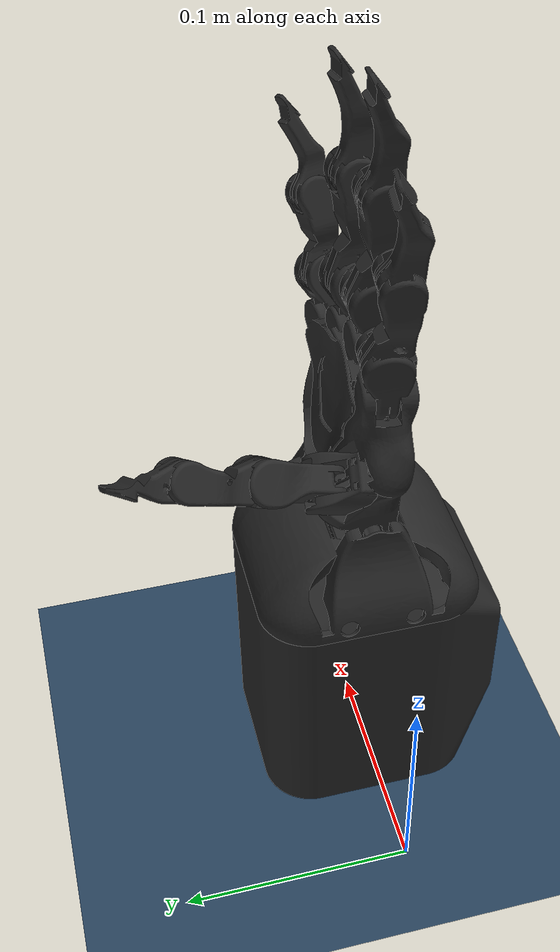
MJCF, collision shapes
<?xml version="1.0" ?>
<mujoco model="ORCA hand right scene">

  <include file="models/assets/scene.xml"/>

  <include file="models/assets/options.xml"/>

  <include file="models/mjcf/orcahand_right.mjcf"/>

  <worldbody>
    <body name="right_mount" pos="0.09363 0.00332 0.058" euler="1.5708 0 0">
      <include file="models/mjcf/orcahand_right_body.xml"/>
    </body>
  </worldbody>

</mujoco>

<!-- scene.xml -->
<mujoco model="orcahand_v2_scene">

  <!-- Camera placement -->
  <statistic extent="0.3" center="0 0 0.15"/>
  <visual>
    <rgba haze="0.15 0.25 0.35 1"/>
    <quality shadowsize="8192"/>
    <global azimuth="220" elevation="-30"/>
  </visual>

  <!-- Background -->
  <asset>
    <texture type="skybox" builtin="gradient" rgb1="0.3 0.5 0.7" rgb2="0 0 0" width="512" height="3072"/>
    <texture type="2d" name="groundplane" builtin="checker" mark="edge" rgb1="0.2 0.3 0.4" rgb2="0.1 0.2 0.3"
      markrgb="0.8 0.8 0.8" width="300" height="300"/>
    <material name="groundplane" texture="groundplane" texuniform="true" texrepeat="5 5" reflectance="0.2"/>
  </asset>

  <worldbody>
    <!-- Lighting and floor -->
    <light pos="0 0.5 1" dir="0 -0.3 -1" diffuse="0.8 0.8 0.8" specular="0.2 0.2 0.2"/>
    <light pos="0.3 0.5 1.5" dir="0 -0.3 -1" directional="true" diffuse="0.6 0.6 0.6" specular="0.1 0.1 0.1"/>
    <geom name="floor" pos="0 0 0" size="0 0 0.05" type="plane" material="groundplane"/>

  </worldbody>

</mujoco>

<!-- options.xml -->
<mujoco model="orcahand_v2_options">

  <!-- eulerseq "XYZ" corresponds to URDF "rpy" -->
  <compiler angle="radian" eulerseq="XYZ"/>

  <default>
    <mesh scale="0.001 0.001 0.001"/>
    <!-- Visual classes -->
    <default class="visual_base">
      <geom conaffinity="0" condim="1" contype="0" group="2" type="mesh"/>
      <default class="skin">
        <geom material="white"/>
      </default>
      <default class="bone">
        <geom material="black"/>
      </default>
    </default>
    <!-- Collision class -->
    <default class="collision">
      <geom conaffinity="1" condim="3" contype="1" group="1" material="invisible" type="mesh"/>
    </default>
    <!-- Joints -->
    <joint armature="0.001" damping="0.1" frictionloss="0.001" limited="true" margin="0.01" type="hinge"/>
    <position ctrllimited="true" forcelimited="true" forcerange="-1 1" kp="2.0"/>
  </default>

  <asset>
    <!-- Materials -->
    <material name="white" rgba="1 1 1 1" shininess="0.02" specular="0.005"/>
    <material name="black" rgba="0.1569 0.1569 0.1569 1" shininess="0.5" specular="0.1"/>
    <material name="invisible" rgba="1 1 1 0" shininess="0" specular="0"/>
  </asset>

</mujoco>

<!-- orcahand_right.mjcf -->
<mujoco model="orcahand_right">
	<default>
		<geom type="mesh" friction="1 0.005 0.001" condim="3" margin="0.0005" contype="1" conaffinity="1" />
		<joint type="hinge" limited="true" damping="0.1" armature="0.001" margin="0.01" frictionloss="0.001" />
		<position ctrllimited="true" forcelimited="true" forcerange="-1 1" kp="2.0" />
		<mesh scale="0.001 0.001 0.001" />
	</default>
	<asset>
		<mesh name="right_R-T-AP" file="models/assets/right/R-T-AP.stl" />
		<mesh name="right_P-AP" file="models/assets/right/P-AP.stl" />
		<mesh name="right_ForeArmStructure-Model" file="models/assets/right/ForeArmStructure-Model.stl" />
		<mesh name="right_TopTower-Model" file="models/assets/right/TopTower-Model.stl" />
		<mesh name="right_I-AP-R" file="models/assets/right/I-AP-R.stl" />
		<mesh name="right_T-TP-R" file="models/assets/right/T-TP-R.stl" />
		<mesh name="right_R-Carpals" file="models/assets/right/R-Carpals.stl" />
		<mesh name="right_R-Carpals_Skin" file="models/assets/right/R-Carpals_Skin.stl" />
		<mesh name="right_M-AP" file="models/assets/right/M-AP.stl" />
		<mesh name="right_ForeArmStructure-Model_Logo" file="models/assets/right/ForeArmStructure-Model_Logo.stl" />
		<mesh name="right_T-PP_Skin" file="models/assets/right/T-PP_Skin.stl" />
		<mesh name="right_P-IP_IP" file="models/assets/right/P-IP_IP.stl" />
		<mesh name="right_M-PP_PP" file="models/assets/right/M-PP_PP.stl" />
		<mesh name="right_M-PP_Skin" file="models/assets/right/M-PP_Skin.stl" />
		<mesh name="right_T-DP_Skin" file="models/assets/right/T-DP_Skin.stl" />
		<mesh name="right_P-FingerTipAssembly_P-DP-Skin" file="models/assets/right/P-FingerTipAssembly_P-DP-Skin.stl" />
		<mesh name="right_T-PP_PP" file="models/assets/right/T-PP_PP.stl" />
		<mesh name="right_I-IP_IP" file="models/assets/right/I-IP_IP.stl" />
		<mesh name="right_T-DP_T-DP" file="models/assets/right/T-DP_T-DP.stl" />
		<mesh name="right_P-PP_Skin" file="models/assets/right/P-PP_Skin.stl" />
		<mesh name="right_I-PP_PP" file="models/assets/right/I-PP_PP.stl" />
		<mesh name="right_I-FingerTipAssembly_I-DP-Skin" file="models/assets/right/I-FingerTipAssembly_I-DP-Skin.stl" />
		<mesh name="right_P-PP_PP" file="models/assets/right/P-PP_PP.stl" />
		<mesh name="right_I-PP_Skin" file="models/assets/right/I-PP_Skin.stl" />
		<mesh name="right_M-IP_IP" file="models/assets/right/M-IP_IP.stl" />
		<mesh name="right_M-FingerTipAssembly_M-DP-Skin" file="models/assets/right/M-FingerTipAssembly_M-DP-Skin.stl" />
		<mesh name="right_forearm_collision" file="models/assets/right/forearm_collision.stl" />
		<mesh name="right_tower_collision_0" file="models/assets/right/tower_collision_0.stl" />
		<mesh name="right_tower_collision_1" file="models/assets/right/tower_collision_1.stl" />
		<mesh name="right_tower_collision_2" file="models/assets/right/tower_collision_2.stl" />
		<mesh name="right_tower_collision_3" file="models/assets/right/tower_collision_3.stl" />
		<mesh name="right_tower_collision_4" file="models/assets/right/tower_collision_4.stl" />
		<mesh name="right_tower_collision_5" file="models/assets/right/tower_collision_5.stl" />
		<mesh name="right_carpals_collision_0" file="models/assets/right/carpals_collision_0.stl" />
		<mesh name="right_carpals_collision_1" file="models/assets/right/carpals_collision_1.stl" />
		<mesh name="right_carpals_collision_2" file="models/assets/right/carpals_collision_2.stl" />
		<mesh name="right_carpals_collision_3" file="models/assets/right/carpals_collision_3.stl" />
		<mesh name="right_carpals_collision_4" file="models/assets/right/carpals_collision_4.stl" />
		<mesh name="right_carpals_collision_5" file="models/assets/right/carpals_collision_5.stl" />
		<mesh name="right_carpals_collision_6" file="models/assets/right/carpals_collision_6.stl" />
		<mesh name="right_carpals_collision_7" file="models/assets/right/carpals_collision_7.stl" />
		<mesh name="right_pinky_ap_collision" file="models/assets/right/pinky_ap_collision.stl" />
		<mesh name="right_pinky_pp_collision" file="models/assets/right/pinky_pp_collision.stl" />
		<mesh name="right_pinky_dp_collision_0" file="models/assets/right/pinky_dp_collision_0.stl" />
		<mesh name="right_pinky_dp_collision_1" file="models/assets/right/pinky_dp_collision_1.stl" />
		<mesh name="right_pinky_dp_collision_2" file="models/assets/right/pinky_dp_collision_2.stl" />
		<mesh name="right_pinky_dp_collision_3" file="models/assets/right/pinky_dp_collision_3.stl" />
		<mesh name="right_ring_ap_collision" file="models/assets/right/ring_ap_collision.stl" />
		<mesh name="right_ring_pp_collision" file="models/assets/right/ring_pp_collision.stl" />
		<mesh name="right_ring_dp_collision_0" file="models/assets/right/ring_dp_collision_0.stl" />
		<mesh name="right_ring_dp_collision_1" file="models/assets/right/ring_dp_collision_1.stl" />
		<mesh name="right_ring_dp_collision_2" file="models/assets/right/ring_dp_collision_2.stl" />
		<mesh name="right_ring_dp_collision_3" file="models/assets/right/ring_dp_collision_3.stl" />
		<mesh name="right_middle_ap_collision" file="models/assets/right/middle_ap_collision.stl" />
		<mesh name="right_middle_pp_collision" file="models/assets/right/middle_pp_collision.stl" />
		<mesh name="right_middle_dp_collision_0" file="models/assets/right/middle_dp_collision_0.stl" />
		<mesh name="right_middle_dp_collision_1" file="models/assets/right/middle_dp_collision_1.stl" />
		<mesh name="right_middle_dp_collision_2" file="models/assets/right/middle_dp_collision_2.stl" />
		<mesh name="right_middle_dp_collision_3" file="models/assets/right/middle_dp_collision_3.stl" />
		<mesh name="right_index_ap_collision" file="models/assets/right/index_ap_collision.stl" />
		<mesh name="right_index_pp_collision" file="models/assets/right/index_pp_collision.stl" />
		<mesh name="right_index_dp_collision_0" file="models/assets/right/index_dp_collision_0.stl" />
		<mesh name="right_index_dp_collision_1" file="models/assets/right/index_dp_collision_1.stl" />
		<mesh name="right_index_dp_collision_2" file="models/assets/right/index_dp_collision_2.stl" />
		<mesh name="right_index_dp_collision_3" file="models/assets/right/index_dp_collision_3.stl" />
		<mesh name="right_thumb_tp_collision" file="models/assets/right/thumb_tp_collision.stl" />
		<mesh name="right_thumb_ap_collision" file="models/assets/right/thumb_ap_collision.stl" />
		<mesh name="right_thumb_pp_collision" file="models/assets/right/thumb_pp_collision.stl" />
		<mesh name="right_thumb_dp_collision_0" file="models/assets/right/thumb_dp_collision_0.stl" />
		<mesh name="right_thumb_dp_collision_1" file="models/assets/right/thumb_dp_collision_1.stl" />
		<mesh name="right_thumb_dp_collision_2" file="models/assets/right/thumb_dp_collision_2.stl" />
		<mesh name="right_thumb_dp_collision_3" file="models/assets/right/thumb_dp_collision_3.stl" />
	</asset>
	<actuator>
		<position name="right_wrist_actuator" joint="right_wrist" ctrlrange="-1.1344640137963142 0.6108652381980153" />
		<position name="right_pinky_abd_actuator" joint="right_pinky_abd" ctrlrange="-0.5235987755982988 0.5235987755982988" />
		<position name="right_pinky_mcp_actuator" joint="right_pinky_mcp" ctrlrange="-0.4363323129985824 1.7453292519943295" />
		<position name="right_pinky_pip_actuator" joint="right_pinky_pip" ctrlrange="-0.2617993877991494 1.8675022996339325" />
		<position name="right_ring_abd_actuator" joint="right_ring_abd" ctrlrange="-0.47123889803846897 0.47123889803846897" />
		<position name="right_ring_mcp_actuator" joint="right_ring_mcp" ctrlrange="-0.4363323129985824 1.7453292519943295" />
		<position name="right_ring_pip_actuator" joint="right_ring_pip" ctrlrange="-0.2617993877991494 1.8675022996339325" />
		<position name="right_middle_abd_actuator" joint="right_middle_abd" ctrlrange="-0.47123889803846897 0.47123889803846897" />
		<position name="right_middle_mcp_actuator" joint="right_middle_mcp" ctrlrange="-0.4363323129985824 1.7453292519943295" />
		<position name="right_middle_pip_actuator" joint="right_middle_pip" ctrlrange="-0.2617993877991494 1.8675022996339325" />
		<position name="right_index_abd_actuator" joint="right_index_abd" ctrlrange="-0.4363323129985824 0.5235987755982988" />
		<position name="right_index_mcp_actuator" joint="right_index_mcp" ctrlrange="-0.4363323129985824 1.7453292519943295" />
		<position name="right_index_pip_actuator" joint="right_index_pip" ctrlrange="-0.2617993877991494 1.8675022996339325" />
		<position name="right_thumb_cmc_actuator" joint="right_thumb_cmc" ctrlrange="-0.7853981633974483 0.5759586531581288" />
		<position name="right_thumb_abd_actuator" joint="right_thumb_abd" ctrlrange="-0.3141592653589793 0.9599310885968813" />
		<position name="right_thumb_mcp_actuator" joint="right_thumb_mcp" ctrlrange="-0.4363323129985824 1.7453292519943295" />
		<position name="right_thumb_dip_actuator" joint="right_thumb_dip" ctrlrange="-0.2617993877991494 1.8675022996339325" />
	</actuator>
	<contact>
		<exclude body1="right_tower" body2="right_carpals" />
		<exclude body1="right_carpals" body2="right_index_pp" />
		<exclude body1="right_carpals" body2="right_middle_pp" />
		<exclude body1="right_carpals" body2="right_ring_pp" />
		<exclude body1="right_carpals" body2="right_pinky_pp" />
		<exclude body1="right_carpals" body2="right_thumb_ap" />
	</contact>
</mujoco>

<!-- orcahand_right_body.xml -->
<mujoco model="orcahand_right_body">
	<body name="right_tower" quat="1.0 0.0 0.0 0.0">
		<body name="right_ForeArmStructure-Model_e18f2368" pos="0.0 0.0 0.0" quat="1.0 0.0 0.0 0.0">
			<body name="right_TopTower-Model_4a80d30e" pos="-0.010000000000000018 0.05230000000000584 -2.0816681711721685e-17" quat="-0.4999999999999985 0.4999999999999986 -0.5 -0.49999999999999994">
				<body name="right_R-Carpals_8d1f1041" pos="-0.0018770780631086163 0.005000000000000039 0.08950000067055244" quat="-0.7071067811865475 0.0 0.0 0.7071067811865495">
					<body name="right_T-TP-R_1c2b802d" pos="-0.021213412275949937 0.01433246945435063 -0.02172481544690429" quat="0.6591193783565908 0.35951060036119065 -0.07247312029417424 -0.656552678874735">
						<body name="right_R-T-AP_a9723101" pos="-0.03599999999972846 1.3877787807814457e-17 -7.632783294297951e-17" quat="0.819152044288991 -0.5735764363510464 -2.220446049250313e-16 -1.5543122344752192e-15">
							<body name="right_T-PP_68395e98" pos="5.0310089562172146e-17 1.016397654912951e-17 2.90568310557838e-17" quat="1.2212453270876722e-15 0.7071067811865461 -1.3877787807814457e-15 -0.7071067811865444">
								<body name="right_T-DP_b7429e50" pos="0.0010000000000000711 5.204170427930421e-18 0.03200000000000028" quat="1.0000000000000029 0.0 -2.7755575615628914e-17 -1.915134717478395e-15">
									<joint name="right_t-pip" pos="-2.6951590953616836e-16 1.4511389580442956e-16 -4.4964986238156687e-17" axis="4.718447854656915e-16 -0.9999999999999946 3.164135620181696e-15" range="-0.2617993877991494 1.8675022996339325" ref="0.0" />
									<geom mesh="right_T-DP_Skin" material="white" pos="5.329070518200751e-17 -1.7763568394002505e-17 1.7763568394002505e-17" quat="1.0 0.0 0.0 -5.551115123125783e-17" contype="0" conaffinity="0" />
									<geom mesh="right_T-DP_T-DP" material="black" pos="1.7763568394002505e-17 1.7763568394002505e-17 0.0" quat="1.0 1.3877787807814457e-17 -2.7755575615628914e-17 2.7755575615628914e-17" />
								</body>
								<joint name="right_t-mcp" pos="-1.969071627370024e-16 3.15114617423654e-17 2.696802036606928e-17" axis="-3.1363800445660672e-15 -1.0000000000000027 2.942091015256665e-15" range="-0.4363323129985824 1.7453292519943295" ref="0.0" />
								<geom mesh="right_T-PP_Skin" material="white" pos="-1.7763568394002505e-17 0.0 0.0" quat="1.0 0.0 0.0 1.3877787807814457e-17" contype="0" conaffinity="0" />
								<geom mesh="right_T-PP_PP" material="black" pos="-1.7763568394002505e-17 0.0 0.0" quat="1.0 0.0 0.0 1.3877787807814457e-17" />
							</body>
							<joint name="right_t-abd" pos="0.028 -2.6020852139652106e-17 9.540979117872439e-17" axis="-1.4988010832439613e-15 0.3420201433256641 0.9396926207859044" range="-0.3141592653589793 0.9599310885968813" ref="0.0" />
							<geom mesh="right_R-T-AP" material="black" />
						</body>
						<joint name="right_t-cmc" pos="4.228388472693467e-18 4.911435841359335e-17 0.003850000000000067" axis="-7.771561172376096e-16 5.412337245047638e-16 -0.9999999999999931" range="-0.7853981633974483 0.5759586531581288" ref="0.0" />
						<geom mesh="right_T-TP-R" material="black" />
					</body>
					<body name="right_I-AP-R_d95d02d1" pos="-0.025575481691250117 0.0006809253025602396 0.03835732632869239" quat="0.519646788331587 0.5667240334680995 0.4317303415794619 -0.4715930421730138">
						<body name="right_I-PP_bacbd481" pos="-0.0004009681508766414 -1.7564075194265172e-17 2.893681388255187e-15" quat="0.7071067811865461 1.8457457784393227e-15 -0.7071067811865465 -2.0539125955565396e-15">
							<body name="right_I-FingerTipAssembly_ec49c16c" pos="0.0015000000000000208 8.673617379884035e-18 0.0370000000000001" quat="1.0000000000000022 1.6653345369377348e-16 4.163336342344337e-17 3.3861802251067274e-15">
								<joint name="right_i-pip" pos="-6.384780199281326e-17 -1.6933625513663662e-18 -9.316585525567554e-17" axis="-3.608224830031759e-15 -0.999999999999996 2.7755575615628914e-16" range="-0.2617993877991494 1.8675022996339325" ref="0.0" />
								<geom mesh="right_I-IP_IP" material="black" pos="-1.3877787807814458e-18 4.440892098500626e-18 3.552713678800501e-17" quat="0.9999999999999998 -1.179611963664229e-16 -1.3010426069826057e-18 -2.547875105340936e-17" />
								<geom mesh="right_I-FingerTipAssembly_I-DP-Skin" material="white" pos="-2.7755575615628914e-19 4.440892098500626e-18 -3.552713678800501e-17" quat="1.0 -6.938893903907228e-18 -8.673617379884035e-19 -1.0516761073109393e-17" contype="0" conaffinity="0" />
							</body>
							<joint name="right_i-mcp" pos="-8.461858417315034e-17 1.4799510442361432e-17 -1.3855749603332276e-17" axis="5.828670879282072e-15 -1.0000000000000036 1.1102230246251565e-16" range="-0.4363323129985824 1.7453292519943295" ref="0.0" />
							<geom mesh="right_I-PP_Skin" material="white" pos="-2.7755575615628914e-19 4.440892098500626e-18 0.0" quat="1.0 0.0 -4.336808689942018e-19 -6.830473686658678e-18" contype="0" conaffinity="0" />
							<geom mesh="right_I-PP_PP" material="black" pos="-2.7755575615628914e-19 4.440892098500626e-18 0.0" quat="1.0 0.0 -4.336808689942018e-19 -6.830473686658678e-18" />
						</body>
						<joint name="right_i-abd" pos="0.01875000000000003 1.734723475976807e-18 0.000999999999999964" axis="-8.326672684688674e-17 3.3306690738754696e-16 0.9999999999999991" range="-0.4363323129985824 0.5235987755982988" ref="0.0" />
						<geom mesh="right_I-AP-R" material="black" />
					</body>
					<body name="right_M-AP_e04a96f2" pos="-0.0007567300518294843 -0.0011463260089169605 0.04825182678794436" quat="-0.5006540699144025 -0.5006540699144022 -0.4993450733492283 0.4993450733492286">
						<body name="right_M-PP_08efa608" pos="-0.000616967942905312 -1.83772268236293e-17 4.372533151525415e-15" quat="-0.7071067811865464 -2.220446049250313e-15 0.7071067811865461 2.220446049250313e-15">
							<body name="right_M-FingerTipAssembly_34afb748" pos="0.0020000000000000096 -3.469446951953614e-18 0.040000000000000244" quat="1.0000000000000024 2.7755575615628914e-16 1.3877787807814457e-16 3.2751579226442118e-15">
								<joint name="right_m-pip" pos="-5.004759988748243e-17 -1.4318233198945493e-17 -1.6821919643190915e-16" axis="-3.2751579226442118e-15 -0.9999999999999977 4.440892098500626e-16" range="-0.2617993877991494 1.8675022996339325" ref="0.0" />
								<geom mesh="right_M-FingerTipAssembly_M-DP-Skin" material="white" pos="0.0 -1.1102230246251566e-18 0.0" quat="1.0 0.0 0.0 2.0583376280638583e-32" contype="0" conaffinity="0" />
								<geom mesh="right_M-IP_IP" material="black" pos="0.0 1.4432899320127036e-17 0.0" quat="1.0 -1.1102230246251565e-16 1.3552527155997931e-20 -1.7708282553569727e-20" />
							</body>
							<joint name="right_m-mcp" pos="-7.162795302343035e-17 -1.2189131211851784e-17 -1.7580316556723272e-17" axis="6.050715484207103e-15 -1.0000000000000058 -1.1102230246251565e-16" range="-0.4363323129985824 1.7453292519943295" ref="0.0" />
							<geom mesh="right_M-PP_Skin" material="white" pos="0.0 -1.1102230246251566e-18 0.0" quat="1.0 -1.0842021724855044e-19 -6.162975822039155e-33 1.5931051758728167e-31" contype="0" conaffinity="0" />
							<geom mesh="right_M-PP_PP" material="black" pos="0.0 -1.1102230246251566e-18 0.0" quat="1.0 -1.0842021724855044e-19 -6.162975822039155e-33 1.5931051758728167e-31" />
						</body>
						<joint name="right_m-abd" pos="0.019249999999999982 -1.214306433183765e-17 0.0010000000000000213" axis="1.1102230246251565e-15 -2.220446049250313e-16 0.9999999999999971" range="-0.47123889803846897 0.47123889803846897" ref="0.0" />
						<geom mesh="right_M-AP" material="black" />
					</body>
					<body name="right_M-AP_6ec59111" pos="0.02300540741341827 -0.0001014498859375039 0.04085073553625944" quat="-0.4851713041498216 -0.43849204432323763 -0.554729417883375 0.514401405159008">
						<body name="right_M-PP_8660a1eb" pos="-0.0006169679429055062 2.986976985197565e-17 4.528129715804241e-15" quat="-0.7071067811865464 -2.095545958979983e-15 0.7071067811865462 1.9984014443252818e-15">
							<body name="right_M-FingerTipAssembly_424a8e75" pos="0.0019999999999999263 -6.938893903907228e-18 0.040000000000000216" quat="1.0000000000000024 1.1102230246251565e-16 5.551115123125783e-17 3.1086244689504383e-15">
								<joint name="right_r-pip" pos="-4.078794186312799e-17 1.9049422236114406e-17 -1.0521305495457033e-16" axis="-2.942091015256665e-15 -0.999999999999996 2.220446049250313e-16" range="-0.2617993877991494 1.8675022996339325" ref="0.0" />
								<geom mesh="right_M-FingerTipAssembly_M-DP-Skin" material="white" pos="-1.1102230246251566e-18 4.440892098500626e-18 0.0" quat="1.0 -6.938893903907228e-18 6.299706001402638e-19 -3.531120121539116e-19" contype="0" conaffinity="0" />
								<geom mesh="right_M-IP_IP" material="black" pos="-1.1102230246251566e-18 4.440892098500626e-18 -3.552713678800501e-17" quat="1.0 -1.1796119636642288e-16 -6.710720068423415e-19 1.0055228843706928e-17" />
							</body>
							<joint name="right_r-mcp" pos="1.7894285379910634e-17 1.0522308765464415e-17 -1.0523467387009805e-17" axis="5.9396931817445875e-15 -1.0000000000000042 1.1102230246251565e-16" range="-0.4363323129985824 1.7453292519943295" ref="0.0" />
							<geom mesh="right_M-PP_Skin" material="white" pos="-5.551115123125783e-19 0.0 -3.552713678800501e-17" quat="1.0 0.0 1.0744787839022148e-18 -3.948277295454671e-18" contype="0" conaffinity="0" />
							<geom mesh="right_M-PP_PP" material="black" pos="-5.551115123125783e-19 0.0 -3.552713678800501e-17" quat="1.0 0.0 1.0744787839022148e-18 -3.948277295454671e-18" />
						</body>
						<joint name="right_r-abd" pos="0.019249999999999923 1.734723475976807e-18 0.0009999999999999961" axis="8.881784197001252e-16 -5.551115123125783e-17 0.9999999999999994" range="-0.47123889803846897 0.47123889803846897" ref="0.0" />
						<geom mesh="right_M-AP" material="black" />
					</body>
					<body name="right_P-AP_f5e42b61" pos="0.04666877715017955 0.00500098395792942 0.029101417458615046" quat="-0.45731846125607556 -0.3401988014151619 -0.6138690651598068 0.5461587418964287">
						<body name="right_P-PP_1d411b9b" pos="-7.082327310992269e-17 -3.180486315799148e-17 -1.3551337061247461e-17" quat="-0.7071067811865464 -1.9984014443252818e-15 0.707106781186546 2.1094237467877974e-15">
							<body name="right_P-FingerTipAssembly_cd219176" pos="0.0009999999999999005 3.122502256758253e-17 0.030999999999999826" quat="1.0000000000000022 5.551115123125783e-17 1.3877787807814457e-17 3.1086244689504383e-15">
								<joint name="right_p-pip" pos="5.593042944930372e-17 9.962165250943912e-18 -1.5546348698018324e-16" axis="-2.609024107869118e-15 -0.9999999999999968 3.885780586188048e-16" range="-0.2617993877991494 1.8675022996339325" ref="0.0" />
								<geom mesh="right_P-IP_IP" material="black" pos="-5.551115123125783e-18 2.6645352591003756e-17 3.552713678800501e-17" quat="1.0 -1.5265566588595902e-16 7.37257477290143e-18 9.324138683375338e-18" />
								<geom mesh="right_P-FingerTipAssembly_P-DP-Skin" material="white" pos="1.1102230246251566e-18 8.881784197001253e-18 3.552713678800501e-17" quat="1.0 -2.7755575615628914e-17 1.3010426069826053e-18 7.37257477290143e-18" contype="0" conaffinity="0" />
							</body>
							<joint name="right_p-mcp" pos="-4.1531875769068695e-17 9.105164359140306e-18 3.8292038109168244e-17" axis="6.439293542825908e-15 -1.0000000000000049 6.661338147750939e-16" range="-0.4363323129985824 1.7453292519943295" ref="0.0" />
							<geom mesh="right_P-PP_Skin" material="white" pos="1.1102230246251566e-18 8.881784197001253e-18 0.0" quat="1.0 -1.3877787807814457e-17 -4.7704895589362195e-18 5.637851296924623e-18" contype="0" conaffinity="0" />
							<geom mesh="right_P-PP_PP" material="black" pos="1.1102230246251566e-18 8.881784197001253e-18 0.0" quat="1.0 -1.3877787807814457e-17 -4.7704895589362195e-18 5.637851296924623e-18" />
						</body>
						<joint name="right_p-abd" pos="0.017749999999999967 2.42861286636753e-17 0.0010000000000000217" axis="9.71445146547012e-16 1.6653345369377348e-16 0.9999999999999984" range="-0.5235987755982988 0.5235987755982988" ref="0.0" />
						<geom mesh="right_P-AP" material="black" />
					</body>
					<joint name="right_wrist" pos="0.004999999999999997 0.0018770780631086805 -0.049500000670552255" axis="-0.9999999999999963 -1.1270242357758872e-16 5.94450127715256e-17" range="-1.1344640137963142 0.6108652381980153" ref="0.0" />
					<geom mesh="right_R-Carpals" material="black" />
				</body>
				<geom mesh="right_TopTower-Model" material="black" />
			</body>
			<geom mesh="right_ForeArmStructure-Model_Logo" material="white" pos="0.0 0.0 0.0" quat="1.0 0.0 0.0 0.0" contype="0" conaffinity="0" />
			<geom mesh="right_ForeArmStructure-Model" material="black" />
		</body>
	</body>
</mujoco>
